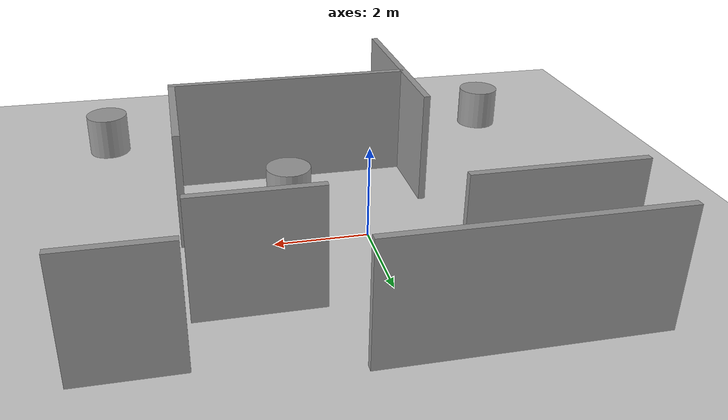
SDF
<sdf version="1.6">
 <world name="default">
  <light name="sun" type="directional">
   <pose>0 0 10 0 -0 0</pose>
   <diffuse>0.8 0.8 0.8 1</diffuse>
   <specular>0.2 0.2 0.2 1</specular>
   <attenuation>
    <range>1000</range>
    <constant>0.9</constant>
    <linear>0.01</linear>
    <quadratic>0.001</quadratic>
   </attenuation>
   <direction>-0.5 0.1 -0.9</direction>
  </light>
  <model name="ground_plane">
   <static>1</static>
   <link name="link">
    <collision name="collision">
     <geometry><plane><normal>0 0 1</normal><size>100 100</size></plane></geometry>
     <surface>
      <contact><collide_bitmask>65535</collide_bitmask></contact>
      <friction><ode><mu>100</mu><mu2>50</mu2></ode></friction>
     </surface>
    </collision>
    <visual name="visual">
     <cast_shadows>0</cast_shadows>
     <geometry><plane><normal>0 0 1</normal><size>100 100</size></plane></geometry>
     <material>
      <script><uri>file://media/materials/scripts/gazebo.material</uri><name>Gazebo/Grey</name></script>
     </material>
    </visual>
   </link>
  </model>
  <gravity>0 0 -9.8</gravity>
  <magnetic_field>6e-06 2.3e-05 -4.2e-05</magnetic_field>
  <atmosphere type="adiabatic"/>
  <physics name="default_physics" default="0" type="ode">
   <max_step_size>0.001</max_step_size>
   <real_time_factor>1</real_time_factor>
   <real_time_update_rate>1000</real_time_update_rate>
  </physics>
  <scene><ambient>0.4 0.4 0.4 1</ambient><background>0.7 0.7 0.7 1</background><shadows>1</shadows></scene>
  <audio><device>default</device></audio>
  <spherical_coordinates>
   <surface_model>EARTH_WGS84</surface_model>
   <latitude_deg>0</latitude_deg>
   <longitude_deg>0</longitude_deg>
   <elevation>0</elevation>
   <heading_deg>0</heading_deg>
  </spherical_coordinates>
  <model name="modelo">
   <pose>0.62766 -0.80122 0 0 -0 0</pose>
   <link name="Wall_10">
    <collision name="Wall_10_Collision">
     <geometry><box><size>2 0.15 2.5</size></box></geometry>
     <pose>0 0 1.25 0 -0 0</pose>
    </collision>
    <visual name="Wall_10_Visual">
     <pose>0 0 1.25 0 -0 0</pose>
     <geometry><box><size>2 0.15 2.5</size></box></geometry>
     <material>
      <script><uri>file://media/materials/scripts/gazebo.material</uri><name>Gazebo/Grey</name></script>
      <ambient>1 1 1 1</ambient>
     </material>
     <meta><layer>0</layer></meta>
    </visual>
    <pose>4.27639 4.43012 0 0 -0 3.14159</pose>
   </link>
   <link name="Wall_12">
    <collision name="Wall_12_Collision">
     <geometry><box><size>3.5 0.15 2.5</size></box></geometry>
     <pose>0 0 1.25 0 -0 0</pose>
    </collision>
    <visual name="Wall_12_Visual">
     <pose>0 0 1.25 0 -0 0</pose>
     <geometry><box><size>3.5 0.15 2.5</size></box></geometry>
     <material>
      <script><uri>file://media/materials/scripts/gazebo.material</uri><name>Gazebo/Grey</name></script>
      <ambient>1 1 1 1</ambient>
     </material>
     <meta><layer>0</layer></meta>
    </visual>
    <pose>-3.52639 3.21342 0 0 -0 0</pose>
   </link>
   <link name="Wall_15">
    <collision name="Wall_15_Collision">
     <geometry><box><size>2.5 0.15 2.5</size></box></geometry>
     <pose>0 0 1.25 0 -0 0</pose>
    </collision>
    <visual name="Wall_15_Visual">
     <pose>0 0 1.25 0 -0 0</pose>
     <geometry><box><size>2.5 0.15 2.5</size></box></geometry>
     <material>
      <script><uri>file://media/materials/scripts/gazebo.material</uri><name>Gazebo/Grey</name></script>
      <ambient>1 1 1 1</ambient>
     </material>
     <meta><layer>0</layer></meta>
    </visual>
    <pose>1.958 3.09175 0 0 -0 3.14159</pose>
   </link>
   <link name="Wall_17">
    <collision name="Wall_17_Collision">
     <geometry><box><size>3 0.15 2.5</size></box></geometry>
     <pose>0 0 1.25 0 -0 0</pose>
    </collision>
    <visual name="Wall_17_Visual">
     <pose>0 0 1.25 0 -0 0</pose>
     <geometry><box><size>3 0.15 2.5</size></box></geometry>
     <material>
      <script><uri>file://media/materials/scripts/gazebo.material</uri><name>Gazebo/Grey</name></script>
      <ambient>1 1 1 1</ambient>
     </material>
     <meta><layer>0</layer></meta>
    </visual>
    <pose>3.19036 -0.958398 0 0 -0 1.5708</pose>
   </link>
   <link name="Wall_2">
    <collision name="Wall_2_Collision">
     <geometry><box><size>4.5 0.15 2.5</size></box></geometry>
     <pose>0 0 1.25 0 -0 0</pose>
    </collision>
    <visual name="Wall_2_Visual">
     <pose>0 0 1.25 0 -0 0</pose>
     <geometry><box><size>4.5 0.15 2.5</size></box></geometry>
     <material>
      <script><uri>file://media/materials/scripts/gazebo.material</uri><name>Gazebo/Grey</name></script>
      <ambient>1 1 1 1</ambient>
     </material>
     <meta><layer>0</layer></meta>
    </visual>
    <pose>-2.24664 -2.80264 0 0 -0 -1.5708</pose>
   </link>
   <link name="Wall_4">
    <collision name="Wall_4_Collision">
     <geometry><box><size>5.5 0.15 2.5</size></box></geometry>
     <pose>0 0 1.25 0 -0 0</pose>
    </collision>
    <visual name="Wall_4_Visual">
     <pose>0 0 1.25 0 -0 0</pose>
     <geometry><box><size>5.5 0.15 2.5</size></box></geometry>
     <material>
      <script><uri>file://media/materials/scripts/gazebo.material</uri><name>Gazebo/Grey</name></script>
      <ambient>1 1 1 1</ambient>
     </material>
     <meta><layer>0</layer></meta>
    </visual>
    <pose>0.515358 -2.3834 0 0 -0 0</pose>
   </link>
   <link name="Wall_8">
    <collision name="Wall_8_Collision">
     <geometry><box><size>5.5 0.15 2.5</size></box></geometry>
     <pose>0 0 1.25 0 -0 0</pose>
    </collision>
    <visual name="Wall_8_Visual">
     <pose>0 0 1.25 0 -0 0</pose>
     <geometry><box><size>5.5 0.15 2.5</size></box></geometry>
     <material>
      <script><uri>file://media/materials/scripts/gazebo.material</uri><name>Gazebo/Grey</name></script>
      <ambient>1 1 1 1</ambient>
     </material>
     <meta><layer>0</layer></meta>
    </visual>
    <pose>-2.34041 4.97764 0 0 -0 3.14159</pose>
   </link>
   <static>1</static>
  </model>
  <model name="unit_cylinder">
   <pose>-3.54699 0.486765 0.499997 3e-06 4e-06 -0</pose>
   <link name="link">
    <inertial>
     <mass>1</mass>
     <inertia><ixx>0.145833</ixx><ixy>0</ixy><ixz>0</ixz><iyy>0.145833</iyy><iyz>0</iyz><izz>0.125</izz></inertia>
    </inertial>
    <collision name="collision">
     <geometry><cylinder><radius>0.5</radius><length>1</length></cylinder></geometry>
    </collision>
    <visual name="visual">
     <geometry><cylinder><radius>0.5</radius><length>1</length></cylinder></geometry>
     <material>
      <script><name>Gazebo/Grey</name><uri>file://media/materials/scripts/gazebo.material</uri></script>
     </material>
    </visual>
   </link>
  </model>
  <model name="unit_cylinder_0">
   <pose>5.4963 -5.54154 0.499997 3e-06 4e-06 -0</pose>
   <link name="link">
    <inertial>
     <mass>1</mass>
     <inertia><ixx>0.145833</ixx><ixy>0</ixy><ixz>0</ixz><iyy>0.145833</iyy><iyz>0</iyz><izz>0.125</izz></inertia>
    </inertial>
    <collision name="collision">
     <geometry><cylinder><radius>0.5</radius><length>1</length></cylinder></geometry>
    </collision>
    <visual name="visual">
     <geometry><cylinder><radius>0.5</radius><length>1</length></cylinder></geometry>
     <material>
      <script><name>Gazebo/Grey</name><uri>file://media/materials/scripts/gazebo.material</uri></script>
     </material>
    </visual>
   </link>
  </model>
  <model name="unit_cylinder_1">
   <pose>1.43026 -1.56839 0.499997 3e-06 4e-06 -0</pose>
   <link name="link">
    <inertial>
     <mass>1</mass>
     <inertia><ixx>0.145833</ixx><ixy>0</ixy><ixz>0</ixz><iyy>0.145833</iyy><iyz>0</iyz><izz>0.125</izz></inertia>
    </inertial>
    <collision name="collision">
     <geometry><cylinder><radius>0.5</radius><length>1</length></cylinder></geometry>
    </collision>
    <visual name="visual">
     <geometry><cylinder><radius>0.5</radius><length>1</length></cylinder></geometry>
     <material>
      <script><name>Gazebo/Grey</name><uri>file://media/materials/scripts/gazebo.material</uri></script>
     </material>
    </visual>
   </link>
  </model>
  <model name="unit_cylinder_2">
   <pose>-4.54626 -5.53776 0.499997 3e-06 4e-06 -0</pose>
   <link name="link">
    <inertial>
     <mass>1</mass>
     <inertia><ixx>0.145833</ixx><ixy>0</ixy><ixz>0</ixz><iyy>0.145833</iyy><iyz>0</iyz><izz>0.125</izz></inertia>
    </inertial>
    <collision name="collision">
     <geometry><cylinder><radius>0.5</radius><length>1</length></cylinder></geometry>
    </collision>
    <visual name="visual">
     <geometry><cylinder><radius>0.5</radius><length>1</length></cylinder></geometry>
     <material>
      <script><name>Gazebo/Grey</name><uri>file://media/materials/scripts/gazebo.material</uri></script>
     </material>
    </visual>
   </link>
  </model>
 </world>
</sdf>
